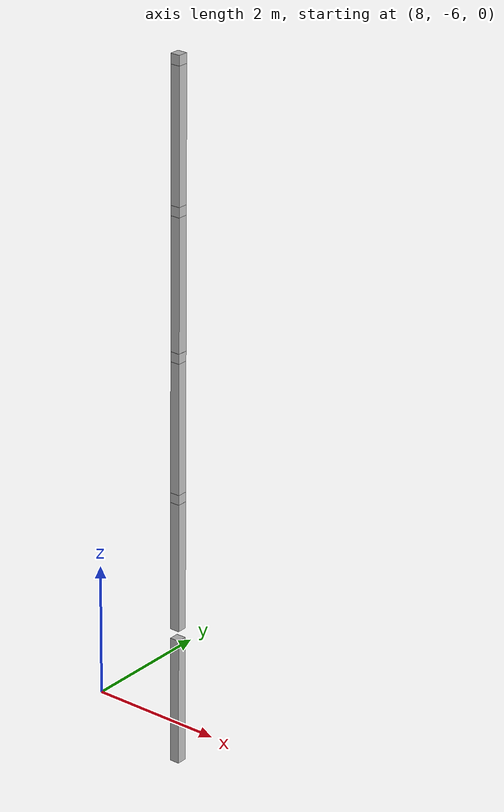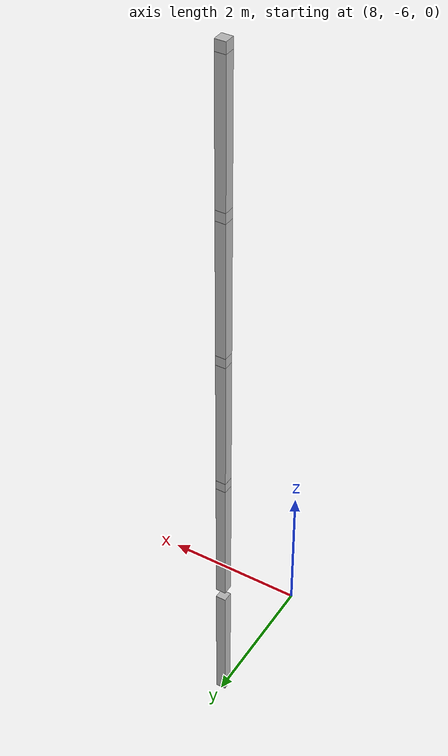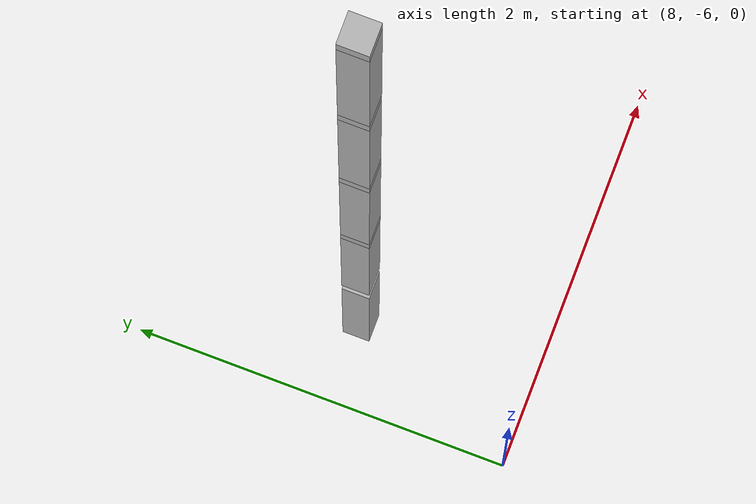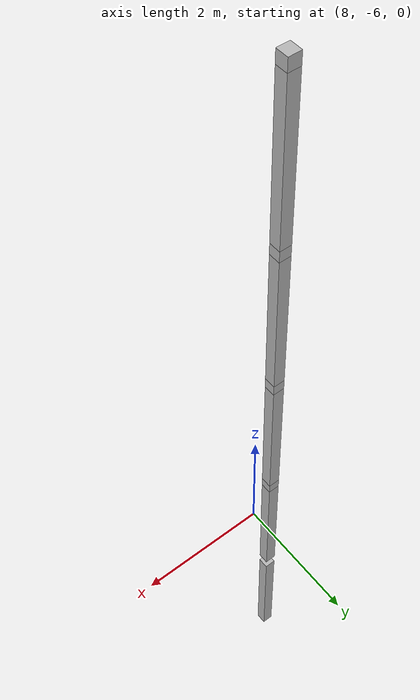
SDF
<sdf version="1.7">
 <world name="default">
  <model name="orthogonal_747_2.000.15_TS">
   <static>1</static>
   <link name="z_link_1_0_7">
    <inertial>
     <mass>1</mass>
     <inertia>
      <ixx>0.166667</ixx>
      <ixy>0</ixy>
      <ixz>0</ixz>
      <iyy>0.166667</iyy>
      <iyz>0</iyz>
      <izz>0.166667</izz>
     </inertia>
    </inertial>
    <pose>15.05 0 2.15 0 -0 0</pose>
    <visual name="visual_0">
     <laser_retro>960</laser_retro>
     <geometry><box><size>0.15 1e-06 2</size></box></geometry>
     <material>
      <script><name>Gazebo/Grey</name><uri>file://media/materials/scripts/gazebo.material</uri></script>
      <shader type="pixel"><normal_map>__default__</normal_map></shader>
      <ambient>0.678 0.498 0.659 1</ambient>
      <diffuse>0.7 0.7 0.7 1</diffuse>
      <specular>0.01 0.01 0.01 1</specular>
      <emissive>0 0 0 1</emissive>
     </material>
     <pose>0 -0.075 0 0 -0 0</pose>
     <transparency>1</transparency>
    </visual>
    <visual name="visual_1">
     <laser_retro>961</laser_retro>
     <geometry><box><size>0.15 1e-06 2</size></box></geometry>
     <material>
      <script><name>Gazebo/Grey</name><uri>file://media/materials/scripts/gazebo.material</uri></script>
      <shader type="pixel"><normal_map>__default__</normal_map></shader>
      <ambient>0.447 0.624 0.812 1</ambient>
      <diffuse>0.7 0.7 0.7 1</diffuse>
      <specular>0.01 0.01 0.01 1</specular>
      <emissive>0 0 0 1</emissive>
     </material>
     <pose>0 0.075 0 0 -0 0</pose>
     <transparency>1</transparency>
    </visual>
    <visual name="visual_2">
     <laser_retro>962</laser_retro>
     <geometry><box><size>0.15 0.15 1e-06</size></box></geometry>
     <material>
      <script><name>Gazebo/Grey</name><uri>file://media/materials/scripts/gazebo.material</uri></script>
      <shader type="pixel"><normal_map>__default__</normal_map></shader>
      <ambient>0.988 0.686 0.243 1</ambient>
      <diffuse>0.7 0.7 0.7 1</diffuse>
      <specular>0.01 0.01 0.01 1</specular>
      <emissive>0 0 0 1</emissive>
     </material>
     <pose>0 0 -1 0 -0 0</pose>
     <transparency>1</transparency>
    </visual>
    <visual name="visual_3">
     <laser_retro>963</laser_retro>
     <geometry><box><size>1e-06 0.15 2</size></box></geometry>
     <material>
      <script><name>Gazebo/Grey</name><uri>file://media/materials/scripts/gazebo.material</uri></script>
      <shader type="pixel"><normal_map>__default__</normal_map></shader>
      <ambient>0.988 0.914 0.31 1</ambient>
      <diffuse>0.7 0.7 0.7 1</diffuse>
      <specular>0.01 0.01 0.01 1</specular>
      <emissive>0 0 0 1</emissive>
     </material>
     <pose>0.075 0 0 0 -0 0</pose>
     <transparency>1</transparency>
    </visual>
    <visual name="visual_4">
     <laser_retro>964</laser_retro>
     <geometry><box><size>0.15 0.15 1e-06</size></box></geometry>
     <material>
      <script><name>Gazebo/Grey</name><uri>file://media/materials/scripts/gazebo.material</uri></script>
      <shader type="pixel"><normal_map>__default__</normal_map></shader>
      <ambient>0.937 0.161 0.161 1</ambient>
      <diffuse>0.7 0.7 0.7 1</diffuse>
      <specular>0.01 0.01 0.01 1</specular>
      <emissive>0 0 0 1</emissive>
     </material>
     <pose>0 0 1 0 -0 0</pose>
     <transparency>1</transparency>
    </visual>
    <visual name="visual_5">
     <laser_retro>965</laser_retro>
     <geometry><box><size>1e-06 0.15 2</size></box></geometry>
     <material>
      <script><name>Gazebo/Grey</name><uri>file://media/materials/scripts/gazebo.material</uri></script>
      <shader type="pixel"><normal_map>__default__</normal_map></shader>
      <ambient>0.541 0.886 0.204 1</ambient>
      <diffuse>0.7 0.7 0.7 1</diffuse>
      <specular>0.01 0.01 0.01 1</specular>
      <emissive>0 0 0 1</emissive>
     </material>
     <pose>-0.075 0 0 0 -0 0</pose>
     <transparency>1</transparency>
    </visual>
    <visual name="visual_texture">
     <geometry><box><size>0.149985 0.149985 1.9998</size></box></geometry>
     <material>
      <script>
       <uri>model://BASE_MODELS/simple_block_v2_textured/materials/scripts</uri>
       <uri>model://BASE_MODELS/simple_block_v2_textured/materials/textures</uri>
       <name>metal</name>
      </script>
     </material>
     <laser_retro>966</laser_retro>
    </visual>
    <collision name="collision">
     <geometry><box><size>0.15 0.15 2</size></box></geometry>
     <surface>
      <friction>
       <ode><mu>1</mu><mu2>1</mu2><fdir1>0 0 0</fdir1><slip1>0</slip1><slip2>0</slip2></ode>
       <torsional>
        <coefficient>1</coefficient>
        <patch_radius>0</patch_radius>
        <surface_radius>0</surface_radius>
        <use_patch_radius>1</use_patch_radius>
        <ode><slip>0</slip></ode>
       </torsional>
      </friction>
      <bounce><restitution_coefficient>0</restitution_coefficient><threshold>1e+06</threshold></bounce>
      <contact>
       <collide_without_contact>0</collide_without_contact>
       <collide_without_contact_bitmask>1</collide_without_contact_bitmask>
       <collide_bitmask>1</collide_bitmask>
       <ode>
        <soft_cfm>0</soft_cfm>
        <soft_erp>0.2</soft_erp>
        <kp>1e+13</kp>
        <kd>1</kd>
        <max_vel>0.01</max_vel>
        <min_depth>0</min_depth>
       </ode>
       <bullet>
        <split_impulse>1</split_impulse>
        <split_impulse_penetration_threshold>-0.01</split_impulse_penetration_threshold>
        <soft_cfm>0</soft_cfm>
        <soft_erp>0.2</soft_erp>
        <kp>1e+13</kp>
        <kd>1</kd>
       </bullet>
      </contact>
     </surface>
    </collision>
   </link>
   <link name="u_link_2_0_7">
    <inertial>
     <mass>1</mass>
     <inertia>
      <ixx>0.166667</ixx>
      <ixy>0</ixy>
      <ixz>0</ixz>
      <iyy>0.166667</iyy>
      <iyz>0</iyz>
      <izz>0.166667</izz>
     </inertia>
    </inertial>
    <pose>15.05 0 5.375 0 -0 0</pose>
    <visual name="visual_0">
     <laser_retro>1856</laser_retro>
     <geometry><box><size>0.15 1e-06 0.15</size></box></geometry>
     <material>
      <script><name>Gazebo/Grey</name><uri>file://media/materials/scripts/gazebo.material</uri></script>
      <shader type="pixel"><normal_map>__default__</normal_map></shader>
      <ambient>0.678 0.498 0.659 1</ambient>
      <diffuse>0.7 0.7 0.7 1</diffuse>
      <specular>0.01 0.01 0.01 1</specular>
      <emissive>0 0 0 1</emissive>
     </material>
     <pose>0 -0.075 0 0 -0 0</pose>
     <transparency>1</transparency>
    </visual>
    <visual name="visual_1">
     <laser_retro>1857</laser_retro>
     <geometry><box><size>0.15 1e-06 0.15</size></box></geometry>
     <material>
      <script><name>Gazebo/Grey</name><uri>file://media/materials/scripts/gazebo.material</uri></script>
      <shader type="pixel"><normal_map>__default__</normal_map></shader>
      <ambient>0.447 0.624 0.812 1</ambient>
      <diffuse>0.7 0.7 0.7 1</diffuse>
      <specular>0.01 0.01 0.01 1</specular>
      <emissive>0 0 0 1</emissive>
     </material>
     <pose>0 0.075 0 0 -0 0</pose>
     <transparency>1</transparency>
    </visual>
    <visual name="visual_2">
     <laser_retro>1858</laser_retro>
     <geometry><box><size>0.15 0.15 1e-06</size></box></geometry>
     <material>
      <script><name>Gazebo/Grey</name><uri>file://media/materials/scripts/gazebo.material</uri></script>
      <shader type="pixel"><normal_map>__default__</normal_map></shader>
      <ambient>0.988 0.686 0.243 1</ambient>
      <diffuse>0.7 0.7 0.7 1</diffuse>
      <specular>0.01 0.01 0.01 1</specular>
      <emissive>0 0 0 1</emissive>
     </material>
     <pose>0 0 -0.075 0 -0 0</pose>
     <transparency>1</transparency>
    </visual>
    <visual name="visual_3">
     <laser_retro>1859</laser_retro>
     <geometry><box><size>1e-06 0.15 0.15</size></box></geometry>
     <material>
      <script><name>Gazebo/Grey</name><uri>file://media/materials/scripts/gazebo.material</uri></script>
      <shader type="pixel"><normal_map>__default__</normal_map></shader>
      <ambient>0.988 0.914 0.31 1</ambient>
      <diffuse>0.7 0.7 0.7 1</diffuse>
      <specular>0.01 0.01 0.01 1</specular>
      <emissive>0 0 0 1</emissive>
     </material>
     <pose>0.075 0 0 0 -0 0</pose>
     <transparency>1</transparency>
    </visual>
    <visual name="visual_4">
     <laser_retro>1860</laser_retro>
     <geometry><box><size>0.15 0.15 1e-06</size></box></geometry>
     <material>
      <script><name>Gazebo/Grey</name><uri>file://media/materials/scripts/gazebo.material</uri></script>
      <shader type="pixel"><normal_map>__default__</normal_map></shader>
      <ambient>0.937 0.161 0.161 1</ambient>
      <diffuse>0.7 0.7 0.7 1</diffuse>
      <specular>0.01 0.01 0.01 1</specular>
      <emissive>0 0 0 1</emissive>
     </material>
     <pose>0 0 0.075 0 -0 0</pose>
     <transparency>1</transparency>
    </visual>
    <visual name="visual_5">
     <laser_retro>1861</laser_retro>
     <geometry><box><size>1e-06 0.15 0.15</size></box></geometry>
     <material>
      <script><name>Gazebo/Grey</name><uri>file://media/materials/scripts/gazebo.material</uri></script>
      <shader type="pixel"><normal_map>__default__</normal_map></shader>
      <ambient>0.541 0.886 0.204 1</ambient>
      <diffuse>0.7 0.7 0.7 1</diffuse>
      <specular>0.01 0.01 0.01 1</specular>
      <emissive>0 0 0 1</emissive>
     </material>
     <pose>-0.075 0 0 0 -0 0</pose>
     <transparency>1</transparency>
    </visual>
    <visual name="visual_texture">
     <geometry><box><size>0.149985 0.149985 0.149985</size></box></geometry>
     <material>
      <script>
       <uri>model://BASE_MODELS/simple_block_v2_textured/materials/scripts</uri>
       <uri>model://BASE_MODELS/simple_block_v2_textured/materials/textures</uri>
       <name>metal</name>
      </script>
     </material>
     <laser_retro>1862</laser_retro>
    </visual>
    <collision name="collision">
     <geometry><box><size>0.15 0.15 0.15</size></box></geometry>
     <surface>
      <friction>
       <ode><mu>1</mu><mu2>1</mu2><fdir1>0 0 0</fdir1><slip1>0</slip1><slip2>0</slip2></ode>
       <torsional>
        <coefficient>1</coefficient>
        <patch_radius>0</patch_radius>
        <surface_radius>0</surface_radius>
        <use_patch_radius>1</use_patch_radius>
        <ode><slip>0</slip></ode>
       </torsional>
      </friction>
      <bounce><restitution_coefficient>0</restitution_coefficient><threshold>1e+06</threshold></bounce>
      <contact>
       <collide_without_contact>0</collide_without_contact>
       <collide_without_contact_bitmask>1</collide_without_contact_bitmask>
       <collide_bitmask>1</collide_bitmask>
       <ode>
        <soft_cfm>0</soft_cfm>
        <soft_erp>0.2</soft_erp>
        <kp>1e+13</kp>
        <kd>1</kd>
        <max_vel>0.01</max_vel>
        <min_depth>0</min_depth>
       </ode>
       <bullet>
        <split_impulse>1</split_impulse>
        <split_impulse_penetration_threshold>-0.01</split_impulse_penetration_threshold>
        <soft_cfm>0</soft_cfm>
        <soft_erp>0.2</soft_erp>
        <kp>1e+13</kp>
        <kd>1</kd>
       </bullet>
      </contact>
     </surface>
    </collision>
   </link>
   <link name="z_link_2_0_7">
    <inertial>
     <mass>1</mass>
     <inertia>
      <ixx>0.166667</ixx>
      <ixy>0</ixy>
      <ixz>0</ixz>
      <iyy>0.166667</iyy>
      <iyz>0</iyz>
      <izz>0.166667</izz>
     </inertia>
    </inertial>
    <pose>15.05 0 4.3 0 -0 0</pose>
    <visual name="visual_0">
     <laser_retro>1863</laser_retro>
     <geometry><box><size>0.15 1e-06 2</size></box></geometry>
     <material>
      <script><name>Gazebo/Grey</name><uri>file://media/materials/scripts/gazebo.material</uri></script>
      <shader type="pixel"><normal_map>__default__</normal_map></shader>
      <ambient>0.678 0.498 0.659 1</ambient>
      <diffuse>0.7 0.7 0.7 1</diffuse>
      <specular>0.01 0.01 0.01 1</specular>
      <emissive>0 0 0 1</emissive>
     </material>
     <pose>0 -0.075 0 0 -0 0</pose>
     <transparency>1</transparency>
    </visual>
    <visual name="visual_1">
     <laser_retro>1864</laser_retro>
     <geometry><box><size>0.15 1e-06 2</size></box></geometry>
     <material>
      <script><name>Gazebo/Grey</name><uri>file://media/materials/scripts/gazebo.material</uri></script>
      <shader type="pixel"><normal_map>__default__</normal_map></shader>
      <ambient>0.447 0.624 0.812 1</ambient>
      <diffuse>0.7 0.7 0.7 1</diffuse>
      <specular>0.01 0.01 0.01 1</specular>
      <emissive>0 0 0 1</emissive>
     </material>
     <pose>0 0.075 0 0 -0 0</pose>
     <transparency>1</transparency>
    </visual>
    <visual name="visual_2">
     <laser_retro>1865</laser_retro>
     <geometry><box><size>0.15 0.15 1e-06</size></box></geometry>
     <material>
      <script><name>Gazebo/Grey</name><uri>file://media/materials/scripts/gazebo.material</uri></script>
      <shader type="pixel"><normal_map>__default__</normal_map></shader>
      <ambient>0.988 0.686 0.243 1</ambient>
      <diffuse>0.7 0.7 0.7 1</diffuse>
      <specular>0.01 0.01 0.01 1</specular>
      <emissive>0 0 0 1</emissive>
     </material>
     <pose>0 0 -1 0 -0 0</pose>
     <transparency>1</transparency>
    </visual>
    <visual name="visual_3">
     <laser_retro>1866</laser_retro>
     <geometry><box><size>1e-06 0.15 2</size></box></geometry>
     <material>
      <script><name>Gazebo/Grey</name><uri>file://media/materials/scripts/gazebo.material</uri></script>
      <shader type="pixel"><normal_map>__default__</normal_map></shader>
      <ambient>0.988 0.914 0.31 1</ambient>
      <diffuse>0.7 0.7 0.7 1</diffuse>
      <specular>0.01 0.01 0.01 1</specular>
      <emissive>0 0 0 1</emissive>
     </material>
     <pose>0.075 0 0 0 -0 0</pose>
     <transparency>1</transparency>
    </visual>
    <visual name="visual_4">
     <laser_retro>1867</laser_retro>
     <geometry><box><size>0.15 0.15 1e-06</size></box></geometry>
     <material>
      <script><name>Gazebo/Grey</name><uri>file://media/materials/scripts/gazebo.material</uri></script>
      <shader type="pixel"><normal_map>__default__</normal_map></shader>
      <ambient>0.937 0.161 0.161 1</ambient>
      <diffuse>0.7 0.7 0.7 1</diffuse>
      <specular>0.01 0.01 0.01 1</specular>
      <emissive>0 0 0 1</emissive>
     </material>
     <pose>0 0 1 0 -0 0</pose>
     <transparency>1</transparency>
    </visual>
    <visual name="visual_5">
     <laser_retro>1868</laser_retro>
     <geometry><box><size>1e-06 0.15 2</size></box></geometry>
     <material>
      <script><name>Gazebo/Grey</name><uri>file://media/materials/scripts/gazebo.material</uri></script>
      <shader type="pixel"><normal_map>__default__</normal_map></shader>
      <ambient>0.541 0.886 0.204 1</ambient>
      <diffuse>0.7 0.7 0.7 1</diffuse>
      <specular>0.01 0.01 0.01 1</specular>
      <emissive>0 0 0 1</emissive>
     </material>
     <pose>-0.075 0 0 0 -0 0</pose>
     <transparency>1</transparency>
    </visual>
    <visual name="visual_texture">
     <geometry><box><size>0.149985 0.149985 1.9998</size></box></geometry>
     <material>
      <script>
       <uri>model://BASE_MODELS/simple_block_v2_textured/materials/scripts</uri>
       <uri>model://BASE_MODELS/simple_block_v2_textured/materials/textures</uri>
       <name>metal</name>
      </script>
     </material>
     <laser_retro>1869</laser_retro>
    </visual>
    <collision name="collision">
     <geometry><box><size>0.15 0.15 2</size></box></geometry>
     <surface>
      <friction>
       <ode><mu>1</mu><mu2>1</mu2><fdir1>0 0 0</fdir1><slip1>0</slip1><slip2>0</slip2></ode>
       <torsional>
        <coefficient>1</coefficient>
        <patch_radius>0</patch_radius>
        <surface_radius>0</surface_radius>
        <use_patch_radius>1</use_patch_radius>
        <ode><slip>0</slip></ode>
       </torsional>
      </friction>
      <bounce><restitution_coefficient>0</restitution_coefficient><threshold>1e+06</threshold></bounce>
      <contact>
       <collide_without_contact>0</collide_without_contact>
       <collide_without_contact_bitmask>1</collide_without_contact_bitmask>
       <collide_bitmask>1</collide_bitmask>
       <ode>
        <soft_cfm>0</soft_cfm>
        <soft_erp>0.2</soft_erp>
        <kp>1e+13</kp>
        <kd>1</kd>
        <max_vel>0.01</max_vel>
        <min_depth>0</min_depth>
       </ode>
       <bullet>
        <split_impulse>1</split_impulse>
        <split_impulse_penetration_threshold>-0.01</split_impulse_penetration_threshold>
        <soft_cfm>0</soft_cfm>
        <soft_erp>0.2</soft_erp>
        <kp>1e+13</kp>
        <kd>1</kd>
       </bullet>
      </contact>
     </surface>
    </collision>
   </link>
   <link name="u_link_3_0_7">
    <inertial>
     <mass>1</mass>
     <inertia>
      <ixx>0.166667</ixx>
      <ixy>0</ixy>
      <ixz>0</ixz>
      <iyy>0.166667</iyy>
      <iyz>0</iyz>
      <izz>0.166667</izz>
     </inertia>
    </inertial>
    <pose>15.05 0 7.525 0 -0 0</pose>
    <visual name="visual_0">
     <laser_retro>2759</laser_retro>
     <geometry><box><size>0.15 1e-06 0.15</size></box></geometry>
     <material>
      <script><name>Gazebo/Grey</name><uri>file://media/materials/scripts/gazebo.material</uri></script>
      <shader type="pixel"><normal_map>__default__</normal_map></shader>
      <ambient>0.678 0.498 0.659 1</ambient>
      <diffuse>0.7 0.7 0.7 1</diffuse>
      <specular>0.01 0.01 0.01 1</specular>
      <emissive>0 0 0 1</emissive>
     </material>
     <pose>0 -0.075 0 0 -0 0</pose>
     <transparency>1</transparency>
    </visual>
    <visual name="visual_1">
     <laser_retro>2760</laser_retro>
     <geometry><box><size>0.15 1e-06 0.15</size></box></geometry>
     <material>
      <script><name>Gazebo/Grey</name><uri>file://media/materials/scripts/gazebo.material</uri></script>
      <shader type="pixel"><normal_map>__default__</normal_map></shader>
      <ambient>0.447 0.624 0.812 1</ambient>
      <diffuse>0.7 0.7 0.7 1</diffuse>
      <specular>0.01 0.01 0.01 1</specular>
      <emissive>0 0 0 1</emissive>
     </material>
     <pose>0 0.075 0 0 -0 0</pose>
     <transparency>1</transparency>
    </visual>
    <visual name="visual_2">
     <laser_retro>2761</laser_retro>
     <geometry><box><size>0.15 0.15 1e-06</size></box></geometry>
     <material>
      <script><name>Gazebo/Grey</name><uri>file://media/materials/scripts/gazebo.material</uri></script>
      <shader type="pixel"><normal_map>__default__</normal_map></shader>
      <ambient>0.988 0.686 0.243 1</ambient>
      <diffuse>0.7 0.7 0.7 1</diffuse>
      <specular>0.01 0.01 0.01 1</specular>
      <emissive>0 0 0 1</emissive>
     </material>
     <pose>0 0 -0.075 0 -0 0</pose>
     <transparency>1</transparency>
    </visual>
    <visual name="visual_3">
     <laser_retro>2762</laser_retro>
     <geometry><box><size>1e-06 0.15 0.15</size></box></geometry>
     <material>
      <script><name>Gazebo/Grey</name><uri>file://media/materials/scripts/gazebo.material</uri></script>
      <shader type="pixel"><normal_map>__default__</normal_map></shader>
      <ambient>0.988 0.914 0.31 1</ambient>
      <diffuse>0.7 0.7 0.7 1</diffuse>
      <specular>0.01 0.01 0.01 1</specular>
      <emissive>0 0 0 1</emissive>
     </material>
     <pose>0.075 0 0 0 -0 0</pose>
     <transparency>1</transparency>
    </visual>
    <visual name="visual_4">
     <laser_retro>2763</laser_retro>
     <geometry><box><size>0.15 0.15 1e-06</size></box></geometry>
     <material>
      <script><name>Gazebo/Grey</name><uri>file://media/materials/scripts/gazebo.material</uri></script>
      <shader type="pixel"><normal_map>__default__</normal_map></shader>
      <ambient>0.937 0.161 0.161 1</ambient>
      <diffuse>0.7 0.7 0.7 1</diffuse>
      <specular>0.01 0.01 0.01 1</specular>
      <emissive>0 0 0 1</emissive>
     </material>
     <pose>0 0 0.075 0 -0 0</pose>
     <transparency>1</transparency>
    </visual>
    <visual name="visual_5">
     <laser_retro>2764</laser_retro>
     <geometry><box><size>1e-06 0.15 0.15</size></box></geometry>
     <material>
      <script><name>Gazebo/Grey</name><uri>file://media/materials/scripts/gazebo.material</uri></script>
      <shader type="pixel"><normal_map>__default__</normal_map></shader>
      <ambient>0.541 0.886 0.204 1</ambient>
      <diffuse>0.7 0.7 0.7 1</diffuse>
      <specular>0.01 0.01 0.01 1</specular>
      <emissive>0 0 0 1</emissive>
     </material>
     <pose>-0.075 0 0 0 -0 0</pose>
     <transparency>1</transparency>
    </visual>
    <visual name="visual_texture">
     <geometry><box><size>0.149985 0.149985 0.149985</size></box></geometry>
     <material>
      <script>
       <uri>model://BASE_MODELS/simple_block_v2_textured/materials/scripts</uri>
       <uri>model://BASE_MODELS/simple_block_v2_textured/materials/textures</uri>
       <name>metal</name>
      </script>
     </material>
     <laser_retro>2765</laser_retro>
    </visual>
    <collision name="collision">
     <geometry><box><size>0.15 0.15 0.15</size></box></geometry>
     <surface>
      <friction>
       <ode><mu>1</mu><mu2>1</mu2><fdir1>0 0 0</fdir1><slip1>0</slip1><slip2>0</slip2></ode>
       <torsional>
        <coefficient>1</coefficient>
        <patch_radius>0</patch_radius>
        <surface_radius>0</surface_radius>
        <use_patch_radius>1</use_patch_radius>
        <ode><slip>0</slip></ode>
       </torsional>
      </friction>
      <bounce><restitution_coefficient>0</restitution_coefficient><threshold>1e+06</threshold></bounce>
      <contact>
       <collide_without_contact>0</collide_without_contact>
       <collide_without_contact_bitmask>1</collide_without_contact_bitmask>
       <collide_bitmask>1</collide_bitmask>
       <ode>
        <soft_cfm>0</soft_cfm>
        <soft_erp>0.2</soft_erp>
        <kp>1e+13</kp>
        <kd>1</kd>
        <max_vel>0.01</max_vel>
        <min_depth>0</min_depth>
       </ode>
       <bullet>
        <split_impulse>1</split_impulse>
        <split_impulse_penetration_threshold>-0.01</split_impulse_penetration_threshold>
        <soft_cfm>0</soft_cfm>
        <soft_erp>0.2</soft_erp>
        <kp>1e+13</kp>
        <kd>1</kd>
       </bullet>
      </contact>
     </surface>
    </collision>
   </link>
   <link name="z_link_3_0_7">
    <inertial>
     <mass>1</mass>
     <inertia>
      <ixx>0.166667</ixx>
      <ixy>0</ixy>
      <ixz>0</ixz>
      <iyy>0.166667</iyy>
      <iyz>0</iyz>
      <izz>0.166667</izz>
     </inertia>
    </inertial>
    <pose>15.05 0 6.45 0 -0 0</pose>
    <visual name="visual_0">
     <laser_retro>2766</laser_retro>
     <geometry><box><size>0.15 1e-06 2</size></box></geometry>
     <material>
      <script><name>Gazebo/Grey</name><uri>file://media/materials/scripts/gazebo.material</uri></script>
      <shader type="pixel"><normal_map>__default__</normal_map></shader>
      <ambient>0.678 0.498 0.659 1</ambient>
      <diffuse>0.7 0.7 0.7 1</diffuse>
      <specular>0.01 0.01 0.01 1</specular>
      <emissive>0 0 0 1</emissive>
     </material>
     <pose>0 -0.075 0 0 -0 0</pose>
     <transparency>1</transparency>
    </visual>
    <visual name="visual_1">
     <laser_retro>2767</laser_retro>
     <geometry><box><size>0.15 1e-06 2</size></box></geometry>
     <material>
      <script><name>Gazebo/Grey</name><uri>file://media/materials/scripts/gazebo.material</uri></script>
      <shader type="pixel"><normal_map>__default__</normal_map></shader>
      <ambient>0.447 0.624 0.812 1</ambient>
      <diffuse>0.7 0.7 0.7 1</diffuse>
      <specular>0.01 0.01 0.01 1</specular>
      <emissive>0 0 0 1</emissive>
     </material>
     <pose>0 0.075 0 0 -0 0</pose>
     <transparency>1</transparency>
    </visual>
    <visual name="visual_2">
     <laser_retro>2768</laser_retro>
     <geometry><box><size>0.15 0.15 1e-06</size></box></geometry>
     <material>
      <script><name>Gazebo/Grey</name><uri>file://media/materials/scripts/gazebo.material</uri></script>
      <shader type="pixel"><normal_map>__default__</normal_map></shader>
      <ambient>0.988 0.686 0.243 1</ambient>
      <diffuse>0.7 0.7 0.7 1</diffuse>
      <specular>0.01 0.01 0.01 1</specular>
      <emissive>0 0 0 1</emissive>
     </material>
     <pose>0 0 -1 0 -0 0</pose>
     <transparency>1</transparency>
    </visual>
    <visual name="visual_3">
     <laser_retro>2769</laser_retro>
     <geometry><box><size>1e-06 0.15 2</size></box></geometry>
     <material>
      <script><name>Gazebo/Grey</name><uri>file://media/materials/scripts/gazebo.material</uri></script>
      <shader type="pixel"><normal_map>__default__</normal_map></shader>
      <ambient>0.988 0.914 0.31 1</ambient>
      <diffuse>0.7 0.7 0.7 1</diffuse>
      <specular>0.01 0.01 0.01 1</specular>
      <emissive>0 0 0 1</emissive>
     </material>
     <pose>0.075 0 0 0 -0 0</pose>
     <transparency>1</transparency>
    </visual>
    <visual name="visual_4">
     <laser_retro>2770</laser_retro>
     <geometry><box><size>0.15 0.15 1e-06</size></box></geometry>
     <material>
      <script><name>Gazebo/Grey</name><uri>file://media/materials/scripts/gazebo.material</uri></script>
      <shader type="pixel"><normal_map>__default__</normal_map></shader>
      <ambient>0.937 0.161 0.161 1</ambient>
      <diffuse>0.7 0.7 0.7 1</diffuse>
      <specular>0.01 0.01 0.01 1</specular>
      <emissive>0 0 0 1</emissive>
     </material>
     <pose>0 0 1 0 -0 0</pose>
     <transparency>1</transparency>
    </visual>
    <visual name="visual_5">
     <laser_retro>2771</laser_retro>
     <geometry><box><size>1e-06 0.15 2</size></box></geometry>
     <material>
      <script><name>Gazebo/Grey</name><uri>file://media/materials/scripts/gazebo.material</uri></script>
      <shader type="pixel"><normal_map>__default__</normal_map></shader>
      <ambient>0.541 0.886 0.204 1</ambient>
      <diffuse>0.7 0.7 0.7 1</diffuse>
      <specular>0.01 0.01 0.01 1</specular>
      <emissive>0 0 0 1</emissive>
     </material>
     <pose>-0.075 0 0 0 -0 0</pose>
     <transparency>1</transparency>
    </visual>
    <visual name="visual_texture">
     <geometry><box><size>0.149985 0.149985 1.9998</size></box></geometry>
     <material>
      <script>
       <uri>model://BASE_MODELS/simple_block_v2_textured/materials/scripts</uri>
       <uri>model://BASE_MODELS/simple_block_v2_textured/materials/textures</uri>
       <name>metal</name>
      </script>
     </material>
     <laser_retro>2772</laser_retro>
    </visual>
    <collision name="collision">
     <geometry><box><size>0.15 0.15 2</size></box></geometry>
     <surface>
      <friction>
       <ode><mu>1</mu><mu2>1</mu2><fdir1>0 0 0</fdir1><slip1>0</slip1><slip2>0</slip2></ode>
       <torsional>
        <coefficient>1</coefficient>
        <patch_radius>0</patch_radius>
        <surface_radius>0</surface_radius>
        <use_patch_radius>1</use_patch_radius>
        <ode><slip>0</slip></ode>
       </torsional>
      </friction>
      <bounce><restitution_coefficient>0</restitution_coefficient><threshold>1e+06</threshold></bounce>
      <contact>
       <collide_without_contact>0</collide_without_contact>
       <collide_without_contact_bitmask>1</collide_without_contact_bitmask>
       <collide_bitmask>1</collide_bitmask>
       <ode>
        <soft_cfm>0</soft_cfm>
        <soft_erp>0.2</soft_erp>
        <kp>1e+13</kp>
        <kd>1</kd>
        <max_vel>0.01</max_vel>
        <min_depth>0</min_depth>
       </ode>
       <bullet>
        <split_impulse>1</split_impulse>
        <split_impulse_penetration_threshold>-0.01</split_impulse_penetration_threshold>
        <soft_cfm>0</soft_cfm>
        <soft_erp>0.2</soft_erp>
        <kp>1e+13</kp>
        <kd>1</kd>
       </bullet>
      </contact>
     </surface>
    </collision>
   </link>
   <link name="u_link_4_0_7">
    <inertial>
     <mass>1</mass>
     <inertia>
      <ixx>0.166667</ixx>
      <ixy>0</ixy>
      <ixz>0</ixz>
      <iyy>0.166667</iyy>
      <iyz>0</iyz>
      <izz>0.166667</izz>
     </inertia>
    </inertial>
    <pose>15.05 0 9.675 0 -0 0</pose>
    <visual name="visual_0">
     <laser_retro>3662</laser_retro>
     <geometry><box><size>0.15 1e-06 0.15</size></box></geometry>
     <material>
      <script><name>Gazebo/Grey</name><uri>file://media/materials/scripts/gazebo.material</uri></script>
      <shader type="pixel"><normal_map>__default__</normal_map></shader>
      <ambient>0.678 0.498 0.659 1</ambient>
      <diffuse>0.7 0.7 0.7 1</diffuse>
      <specular>0.01 0.01 0.01 1</specular>
      <emissive>0 0 0 1</emissive>
     </material>
     <pose>0 -0.075 0 0 -0 0</pose>
     <transparency>1</transparency>
    </visual>
    <visual name="visual_1">
     <laser_retro>3663</laser_retro>
     <geometry><box><size>0.15 1e-06 0.15</size></box></geometry>
     <material>
      <script><name>Gazebo/Grey</name><uri>file://media/materials/scripts/gazebo.material</uri></script>
      <shader type="pixel"><normal_map>__default__</normal_map></shader>
      <ambient>0.447 0.624 0.812 1</ambient>
      <diffuse>0.7 0.7 0.7 1</diffuse>
      <specular>0.01 0.01 0.01 1</specular>
      <emissive>0 0 0 1</emissive>
     </material>
     <pose>0 0.075 0 0 -0 0</pose>
     <transparency>1</transparency>
    </visual>
    <visual name="visual_2">
     <laser_retro>3664</laser_retro>
     <geometry><box><size>0.15 0.15 1e-06</size></box></geometry>
     <material>
      <script><name>Gazebo/Grey</name><uri>file://media/materials/scripts/gazebo.material</uri></script>
      <shader type="pixel"><normal_map>__default__</normal_map></shader>
      <ambient>0.988 0.686 0.243 1</ambient>
      <diffuse>0.7 0.7 0.7 1</diffuse>
      <specular>0.01 0.01 0.01 1</specular>
      <emissive>0 0 0 1</emissive>
     </material>
     <pose>0 0 -0.075 0 -0 0</pose>
     <transparency>1</transparency>
    </visual>
    <visual name="visual_3">
     <laser_retro>3665</laser_retro>
     <geometry><box><size>1e-06 0.15 0.15</size></box></geometry>
     <material>
      <script><name>Gazebo/Grey</name><uri>file://media/materials/scripts/gazebo.material</uri></script>
      <shader type="pixel"><normal_map>__default__</normal_map></shader>
      <ambient>0.988 0.914 0.31 1</ambient>
      <diffuse>0.7 0.7 0.7 1</diffuse>
      <specular>0.01 0.01 0.01 1</specular>
      <emissive>0 0 0 1</emissive>
     </material>
     <pose>0.075 0 0 0 -0 0</pose>
     <transparency>1</transparency>
    </visual>
    <visual name="visual_4">
     <laser_retro>3666</laser_retro>
     <geometry><box><size>0.15 0.15 1e-06</size></box></geometry>
     <material>
      <script><name>Gazebo/Grey</name><uri>file://media/materials/scripts/gazebo.material</uri></script>
      <shader type="pixel"><normal_map>__default__</normal_map></shader>
      <ambient>0.937 0.161 0.161 1</ambient>
      <diffuse>0.7 0.7 0.7 1</diffuse>
      <specular>0.01 0.01 0.01 1</specular>
      <emissive>0 0 0 1</emissive>
     </material>
     <pose>0 0 0.075 0 -0 0</pose>
     <transparency>1</transparency>
    </visual>
    <visual name="visual_5">
     <laser_retro>3667</laser_retro>
     <geometry><box><size>1e-06 0.15 0.15</size></box></geometry>
     <material>
      <script><name>Gazebo/Grey</name><uri>file://media/materials/scripts/gazebo.material</uri></script>
      <shader type="pixel"><normal_map>__default__</normal_map></shader>
      <ambient>0.541 0.886 0.204 1</ambient>
      <diffuse>0.7 0.7 0.7 1</diffuse>
      <specular>0.01 0.01 0.01 1</specular>
      <emissive>0 0 0 1</emissive>
     </material>
     <pose>-0.075 0 0 0 -0 0</pose>
     <transparency>1</transparency>
    </visual>
    <visual name="visual_texture">
     <geometry><box><size>0.149985 0.149985 0.149985</size></box></geometry>
     <material>
      <script>
       <uri>model://BASE_MODELS/simple_block_v2_textured/materials/scripts</uri>
       <uri>model://BASE_MODELS/simple_block_v2_textured/materials/textures</uri>
       <name>metal</name>
      </script>
     </material>
     <laser_retro>3668</laser_retro>
    </visual>
    <collision name="collision">
     <geometry><box><size>0.15 0.15 0.15</size></box></geometry>
     <surface>
      <friction>
       <ode><mu>1</mu><mu2>1</mu2><fdir1>0 0 0</fdir1><slip1>0</slip1><slip2>0</slip2></ode>
       <torsional>
        <coefficient>1</coefficient>
        <patch_radius>0</patch_radius>
        <surface_radius>0</surface_radius>
        <use_patch_radius>1</use_patch_radius>
        <ode><slip>0</slip></ode>
       </torsional>
      </friction>
      <bounce><restitution_coefficient>0</restitution_coefficient><threshold>1e+06</threshold></bounce>
      <contact>
       <collide_without_contact>0</collide_without_contact>
       <collide_without_contact_bitmask>1</collide_without_contact_bitmask>
       <collide_bitmask>1</collide_bitmask>
       <ode>
        <soft_cfm>0</soft_cfm>
        <soft_erp>0.2</soft_erp>
        <kp>1e+13</kp>
        <kd>1</kd>
        <max_vel>0.01</max_vel>
        <min_depth>0</min_depth>
       </ode>
       <bullet>
        <split_impulse>1</split_impulse>
        <split_impulse_penetration_threshold>-0.01</split_impulse_penetration_threshold>
        <soft_cfm>0</soft_cfm>
        <soft_erp>0.2</soft_erp>
        <kp>1e+13</kp>
        <kd>1</kd>
       </bullet>
      </contact>
     </surface>
    </collision>
   </link>
   <link name="z_link_4_0_7">
    <inertial>
     <mass>1</mass>
     <inertia>
      <ixx>0.166667</ixx>
      <ixy>0</ixy>
      <ixz>0</ixz>
      <iyy>0.166667</iyy>
      <iyz>0</iyz>
      <izz>0.166667</izz>
     </inertia>
    </inertial>
    <pose>15.05 0 8.6 0 -0 0</pose>
    <visual name="visual_0">
     <laser_retro>3669</laser_retro>
     <geometry><box><size>0.15 1e-06 2</size></box></geometry>
     <material>
      <script><name>Gazebo/Grey</name><uri>file://media/materials/scripts/gazebo.material</uri></script>
      <shader type="pixel"><normal_map>__default__</normal_map></shader>
      <ambient>0.678 0.498 0.659 1</ambient>
      <diffuse>0.7 0.7 0.7 1</diffuse>
      <specular>0.01 0.01 0.01 1</specular>
      <emissive>0 0 0 1</emissive>
     </material>
     <pose>0 -0.075 0 0 -0 0</pose>
     <transparency>1</transparency>
    </visual>
    <visual name="visual_1">
     <laser_retro>3670</laser_retro>
     <geometry><box><size>0.15 1e-06 2</size></box></geometry>
     <material>
      <script><name>Gazebo/Grey</name><uri>file://media/materials/scripts/gazebo.material</uri></script>
      <shader type="pixel"><normal_map>__default__</normal_map></shader>
      <ambient>0.447 0.624 0.812 1</ambient>
      <diffuse>0.7 0.7 0.7 1</diffuse>
      <specular>0.01 0.01 0.01 1</specular>
      <emissive>0 0 0 1</emissive>
     </material>
     <pose>0 0.075 0 0 -0 0</pose>
     <transparency>1</transparency>
    </visual>
    <visual name="visual_2">
     <laser_retro>3671</laser_retro>
     <geometry><box><size>0.15 0.15 1e-06</size></box></geometry>
     <material>
      <script><name>Gazebo/Grey</name><uri>file://media/materials/scripts/gazebo.material</uri></script>
      <shader type="pixel"><normal_map>__default__</normal_map></shader>
      <ambient>0.988 0.686 0.243 1</ambient>
      <diffuse>0.7 0.7 0.7 1</diffuse>
      <specular>0.01 0.01 0.01 1</specular>
      <emissive>0 0 0 1</emissive>
     </material>
     <pose>0 0 -1 0 -0 0</pose>
     <transparency>1</transparency>
    </visual>
    <visual name="visual_3">
     <laser_retro>3672</laser_retro>
     <geometry><box><size>1e-06 0.15 2</size></box></geometry>
     <material>
      <script><name>Gazebo/Grey</name><uri>file://media/materials/scripts/gazebo.material</uri></script>
      <shader type="pixel"><normal_map>__default__</normal_map></shader>
      <ambient>0.988 0.914 0.31 1</ambient>
      <diffuse>0.7 0.7 0.7 1</diffuse>
      <specular>0.01 0.01 0.01 1</specular>
      <emissive>0 0 0 1</emissive>
     </material>
     <pose>0.075 0 0 0 -0 0</pose>
     <transparency>1</transparency>
    </visual>
    <visual name="visual_4">
     <laser_retro>3673</laser_retro>
     <geometry><box><size>0.15 0.15 1e-06</size></box></geometry>
     <material>
      <script><name>Gazebo/Grey</name><uri>file://media/materials/scripts/gazebo.material</uri></script>
      <shader type="pixel"><normal_map>__default__</normal_map></shader>
      <ambient>0.937 0.161 0.161 1</ambient>
      <diffuse>0.7 0.7 0.7 1</diffuse>
      <specular>0.01 0.01 0.01 1</specular>
      <emissive>0 0 0 1</emissive>
     </material>
     <pose>0 0 1 0 -0 0</pose>
     <transparency>1</transparency>
    </visual>
    <visual name="visual_5">
     <laser_retro>3674</laser_retro>
     <geometry><box><size>1e-06 0.15 2</size></box></geometry>
     <material>
      <script><name>Gazebo/Grey</name><uri>file://media/materials/scripts/gazebo.material</uri></script>
      <shader type="pixel"><normal_map>__default__</normal_map></shader>
      <ambient>0.541 0.886 0.204 1</ambient>
      <diffuse>0.7 0.7 0.7 1</diffuse>
      <specular>0.01 0.01 0.01 1</specular>
      <emissive>0 0 0 1</emissive>
     </material>
     <pose>-0.075 0 0 0 -0 0</pose>
     <transparency>1</transparency>
    </visual>
    <visual name="visual_texture">
     <geometry><box><size>0.149985 0.149985 1.9998</size></box></geometry>
     <material>
      <script>
       <uri>model://BASE_MODELS/simple_block_v2_textured/materials/scripts</uri>
       <uri>model://BASE_MODELS/simple_block_v2_textured/materials/textures</uri>
       <name>metal</name>
      </script>
     </material>
     <laser_retro>3675</laser_retro>
    </visual>
    <collision name="collision">
     <geometry><box><size>0.15 0.15 2</size></box></geometry>
     <surface>
      <friction>
       <ode><mu>1</mu><mu2>1</mu2><fdir1>0 0 0</fdir1><slip1>0</slip1><slip2>0</slip2></ode>
       <torsional>
        <coefficient>1</coefficient>
        <patch_radius>0</patch_radius>
        <surface_radius>0</surface_radius>
        <use_patch_radius>1</use_patch_radius>
        <ode><slip>0</slip></ode>
       </torsional>
      </friction>
      <bounce><restitution_coefficient>0</restitution_coefficient><threshold>1e+06</threshold></bounce>
      <contact>
       <collide_without_contact>0</collide_without_contact>
       <collide_without_contact_bitmask>1</collide_without_contact_bitmask>
       <collide_bitmask>1</collide_bitmask>
       <ode>
        <soft_cfm>0</soft_cfm>
        <soft_erp>0.2</soft_erp>
        <kp>1e+13</kp>
        <kd>1</kd>
        <max_vel>0.01</max_vel>
        <min_depth>0</min_depth>
       </ode>
       <bullet>
        <split_impulse>1</split_impulse>
        <split_impulse_penetration_threshold>-0.01</split_impulse_penetration_threshold>
        <soft_cfm>0</soft_cfm>
        <soft_erp>0.2</soft_erp>
        <kp>1e+13</kp>
        <kd>1</kd>
       </bullet>
      </contact>
     </surface>
    </collision>
   </link>
   <link name="u_link_5_0_7">
    <inertial>
     <mass>1</mass>
     <inertia>
      <ixx>0.166667</ixx>
      <ixy>0</ixy>
      <ixz>0</ixz>
      <iyy>0.166667</iyy>
      <iyz>0</iyz>
      <izz>0.166667</izz>
     </inertia>
    </inertial>
    <pose>15.05 0 11.825 0 -0 0</pose>
    <visual name="visual_0">
     <laser_retro>4565</laser_retro>
     <geometry><box><size>0.15 1e-06 0.15</size></box></geometry>
     <material>
      <script><name>Gazebo/Grey</name><uri>file://media/materials/scripts/gazebo.material</uri></script>
      <shader type="pixel"><normal_map>__default__</normal_map></shader>
      <ambient>0.678 0.498 0.659 1</ambient>
      <diffuse>0.7 0.7 0.7 1</diffuse>
      <specular>0.01 0.01 0.01 1</specular>
      <emissive>0 0 0 1</emissive>
     </material>
     <pose>0 -0.075 0 0 -0 0</pose>
     <transparency>1</transparency>
    </visual>
    <visual name="visual_1">
     <laser_retro>4566</laser_retro>
     <geometry><box><size>0.15 1e-06 0.15</size></box></geometry>
     <material>
      <script><name>Gazebo/Grey</name><uri>file://media/materials/scripts/gazebo.material</uri></script>
      <shader type="pixel"><normal_map>__default__</normal_map></shader>
      <ambient>0.447 0.624 0.812 1</ambient>
      <diffuse>0.7 0.7 0.7 1</diffuse>
      <specular>0.01 0.01 0.01 1</specular>
      <emissive>0 0 0 1</emissive>
     </material>
     <pose>0 0.075 0 0 -0 0</pose>
     <transparency>1</transparency>
    </visual>
    <visual name="visual_2">
     <laser_retro>4567</laser_retro>
     <geometry><box><size>0.15 0.15 1e-06</size></box></geometry>
     <material>
      <script><name>Gazebo/Grey</name><uri>file://media/materials/scripts/gazebo.material</uri></script>
      <shader type="pixel"><normal_map>__default__</normal_map></shader>
      <ambient>0.988 0.686 0.243 1</ambient>
      <diffuse>0.7 0.7 0.7 1</diffuse>
      <specular>0.01 0.01 0.01 1</specular>
      <emissive>0 0 0 1</emissive>
     </material>
     <pose>0 0 -0.075 0 -0 0</pose>
     <transparency>1</transparency>
    </visual>
    <visual name="visual_3">
     <laser_retro>4568</laser_retro>
     <geometry><box><size>1e-06 0.15 0.15</size></box></geometry>
     <material>
      <script><name>Gazebo/Grey</name><uri>file://media/materials/scripts/gazebo.material</uri></script>
      <shader type="pixel"><normal_map>__default__</normal_map></shader>
      <ambient>0.988 0.914 0.31 1</ambient>
      <diffuse>0.7 0.7 0.7 1</diffuse>
      <specular>0.01 0.01 0.01 1</specular>
      <emissive>0 0 0 1</emissive>
     </material>
     <pose>0.075 0 0 0 -0 0</pose>
     <transparency>1</transparency>
    </visual>
    <visual name="visual_4">
     <laser_retro>4569</laser_retro>
     <geometry><box><size>0.15 0.15 1e-06</size></box></geometry>
     <material>
      <script><name>Gazebo/Grey</name><uri>file://media/materials/scripts/gazebo.material</uri></script>
      <shader type="pixel"><normal_map>__default__</normal_map></shader>
      <ambient>0.937 0.161 0.161 1</ambient>
      <diffuse>0.7 0.7 0.7 1</diffuse>
      <specular>0.01 0.01 0.01 1</specular>
      <emissive>0 0 0 1</emissive>
     </material>
     <pose>0 0 0.075 0 -0 0</pose>
     <transparency>1</transparency>
    </visual>
    <visual name="visual_5">
     <laser_retro>4570</laser_retro>
     <geometry><box><size>1e-06 0.15 0.15</size></box></geometry>
     <material>
      <script><name>Gazebo/Grey</name><uri>file://media/materials/scripts/gazebo.material</uri></script>
      <shader type="pixel"><normal_map>__default__</normal_map></shader>
      <ambient>0.541 0.886 0.204 1</ambient>
      <diffuse>0.7 0.7 0.7 1</diffuse>
      <specular>0.01 0.01 0.01 1</specular>
      <emissive>0 0 0 1</emissive>
     </material>
     <pose>-0.075 0 0 0 -0 0</pose>
     <transparency>1</transparency>
    </visual>
    <visual name="visual_texture">
     <geometry><box><size>0.149985 0.149985 0.149985</size></box></geometry>
     <material>
      <script>
       <uri>model://BASE_MODELS/simple_block_v2_textured/materials/scripts</uri>
       <uri>model://BASE_MODELS/simple_block_v2_textured/materials/textures</uri>
       <name>metal</name>
      </script>
     </material>
     <laser_retro>4571</laser_retro>
    </visual>
    <collision name="collision">
     <geometry><box><size>0.15 0.15 0.15</size></box></geometry>
     <surface>
      <friction>
       <ode><mu>1</mu><mu2>1</mu2><fdir1>0 0 0</fdir1><slip1>0</slip1><slip2>0</slip2></ode>
       <torsional>
        <coefficient>1</coefficient>
        <patch_radius>0</patch_radius>
        <surface_radius>0</surface_radius>
        <use_patch_radius>1</use_patch_radius>
        <ode><slip>0</slip></ode>
       </torsional>
      </friction>
      <bounce><restitution_coefficient>0</restitution_coefficient><threshold>1e+06</threshold></bounce>
      <contact>
       <collide_without_contact>0</collide_without_contact>
       <collide_without_contact_bitmask>1</collide_without_contact_bitmask>
       <collide_bitmask>1</collide_bitmask>
       <ode>
        <soft_cfm>0</soft_cfm>
        <soft_erp>0.2</soft_erp>
        <kp>1e+13</kp>
        <kd>1</kd>
        <max_vel>0.01</max_vel>
        <min_depth>0</min_depth>
       </ode>
       <bullet>
        <split_impulse>1</split_impulse>
        <split_impulse_penetration_threshold>-0.01</split_impulse_penetration_threshold>
        <soft_cfm>0</soft_cfm>
        <soft_erp>0.2</soft_erp>
        <kp>1e+13</kp>
        <kd>1</kd>
       </bullet>
      </contact>
     </surface>
    </collision>
   </link>
   <link name="z_link_5_0_7">
    <inertial>
     <mass>1</mass>
     <inertia>
      <ixx>0.166667</ixx>
      <ixy>0</ixy>
      <ixz>0</ixz>
      <iyy>0.166667</iyy>
      <iyz>0</iyz>
      <izz>0.166667</izz>
     </inertia>
    </inertial>
    <pose>15.05 0 10.75 0 -0 0</pose>
    <visual name="visual_0">
     <laser_retro>4572</laser_retro>
     <geometry><box><size>0.15 1e-06 2</size></box></geometry>
     <material>
      <script><name>Gazebo/Grey</name><uri>file://media/materials/scripts/gazebo.material</uri></script>
      <shader type="pixel"><normal_map>__default__</normal_map></shader>
      <ambient>0.678 0.498 0.659 1</ambient>
      <diffuse>0.7 0.7 0.7 1</diffuse>
      <specular>0.01 0.01 0.01 1</specular>
      <emissive>0 0 0 1</emissive>
     </material>
     <pose>0 -0.075 0 0 -0 0</pose>
     <transparency>1</transparency>
    </visual>
    <visual name="visual_1">
     <laser_retro>4573</laser_retro>
     <geometry><box><size>0.15 1e-06 2</size></box></geometry>
     <material>
      <script><name>Gazebo/Grey</name><uri>file://media/materials/scripts/gazebo.material</uri></script>
      <shader type="pixel"><normal_map>__default__</normal_map></shader>
      <ambient>0.447 0.624 0.812 1</ambient>
      <diffuse>0.7 0.7 0.7 1</diffuse>
      <specular>0.01 0.01 0.01 1</specular>
      <emissive>0 0 0 1</emissive>
     </material>
     <pose>0 0.075 0 0 -0 0</pose>
     <transparency>1</transparency>
    </visual>
    <visual name="visual_2">
     <laser_retro>4574</laser_retro>
     <geometry><box><size>0.15 0.15 1e-06</size></box></geometry>
     <material>
      <script><name>Gazebo/Grey</name><uri>file://media/materials/scripts/gazebo.material</uri></script>
      <shader type="pixel"><normal_map>__default__</normal_map></shader>
      <ambient>0.988 0.686 0.243 1</ambient>
      <diffuse>0.7 0.7 0.7 1</diffuse>
      <specular>0.01 0.01 0.01 1</specular>
      <emissive>0 0 0 1</emissive>
     </material>
     <pose>0 0 -1 0 -0 0</pose>
     <transparency>1</transparency>
    </visual>
    <visual name="visual_3">
     <laser_retro>4575</laser_retro>
     <geometry><box><size>1e-06 0.15 2</size></box></geometry>
     <material>
      <script><name>Gazebo/Grey</name><uri>file://media/materials/scripts/gazebo.material</uri></script>
      <shader type="pixel"><normal_map>__default__</normal_map></shader>
      <ambient>0.988 0.914 0.31 1</ambient>
      <diffuse>0.7 0.7 0.7 1</diffuse>
      <specular>0.01 0.01 0.01 1</specular>
      <emissive>0 0 0 1</emissive>
     </material>
     <pose>0.075 0 0 0 -0 0</pose>
     <transparency>1</transparency>
    </visual>
    <visual name="visual_4">
     <laser_retro>4576</laser_retro>
     <geometry><box><size>0.15 0.15 1e-06</size></box></geometry>
     <material>
      <script><name>Gazebo/Grey</name><uri>file://media/materials/scripts/gazebo.material</uri></script>
      <shader type="pixel"><normal_map>__default__</normal_map></shader>
      <ambient>0.937 0.161 0.161 1</ambient>
      <diffuse>0.7 0.7 0.7 1</diffuse>
      <specular>0.01 0.01 0.01 1</specular>
      <emissive>0 0 0 1</emissive>
     </material>
     <pose>0 0 1 0 -0 0</pose>
     <transparency>1</transparency>
    </visual>
    <visual name="visual_5">
     <laser_retro>4577</laser_retro>
     <geometry><box><size>1e-06 0.15 2</size></box></geometry>
     <material>
      <script><name>Gazebo/Grey</name><uri>file://media/materials/scripts/gazebo.material</uri></script>
      <shader type="pixel"><normal_map>__default__</normal_map></shader>
      <ambient>0.541 0.886 0.204 1</ambient>
      <diffuse>0.7 0.7 0.7 1</diffuse>
      <specular>0.01 0.01 0.01 1</specular>
      <emissive>0 0 0 1</emissive>
     </material>
     <pose>-0.075 0 0 0 -0 0</pose>
     <transparency>1</transparency>
    </visual>
    <visual name="visual_texture">
     <geometry><box><size>0.149985 0.149985 1.9998</size></box></geometry>
     <material>
      <script>
       <uri>model://BASE_MODELS/simple_block_v2_textured/materials/scripts</uri>
       <uri>model://BASE_MODELS/simple_block_v2_textured/materials/textures</uri>
       <name>metal</name>
      </script>
     </material>
     <laser_retro>4578</laser_retro>
    </visual>
    <collision name="collision">
     <geometry><box><size>0.15 0.15 2</size></box></geometry>
     <surface>
      <friction>
       <ode><mu>1</mu><mu2>1</mu2><fdir1>0 0 0</fdir1><slip1>0</slip1><slip2>0</slip2></ode>
       <torsional>
        <coefficient>1</coefficient>
        <patch_radius>0</patch_radius>
        <surface_radius>0</surface_radius>
        <use_patch_radius>1</use_patch_radius>
        <ode><slip>0</slip></ode>
       </torsional>
      </friction>
      <bounce><restitution_coefficient>0</restitution_coefficient><threshold>1e+06</threshold></bounce>
      <contact>
       <collide_without_contact>0</collide_without_contact>
       <collide_without_contact_bitmask>1</collide_without_contact_bitmask>
       <collide_bitmask>1</collide_bitmask>
       <ode>
        <soft_cfm>0</soft_cfm>
        <soft_erp>0.2</soft_erp>
        <kp>1e+13</kp>
        <kd>1</kd>
        <max_vel>0.01</max_vel>
        <min_depth>0</min_depth>
       </ode>
       <bullet>
        <split_impulse>1</split_impulse>
        <split_impulse_penetration_threshold>-0.01</split_impulse_penetration_threshold>
        <soft_cfm>0</soft_cfm>
        <soft_erp>0.2</soft_erp>
        <kp>1e+13</kp>
        <kd>1</kd>
       </bullet>
      </contact>
     </surface>
    </collision>
   </link>
   <pose>-6.47624 -5 -2.5 0 -0 0</pose>
  </model>
 </world>
</sdf>
